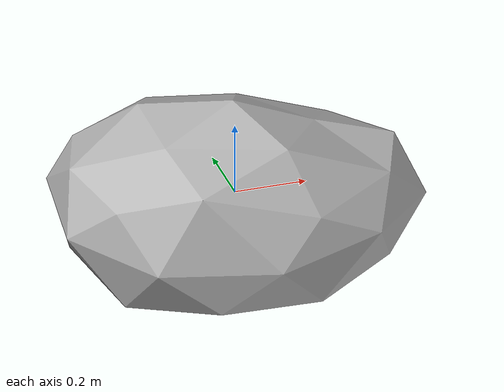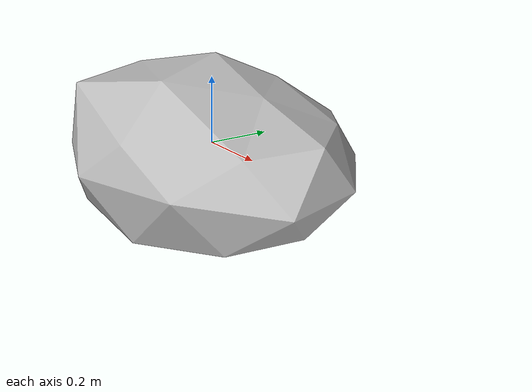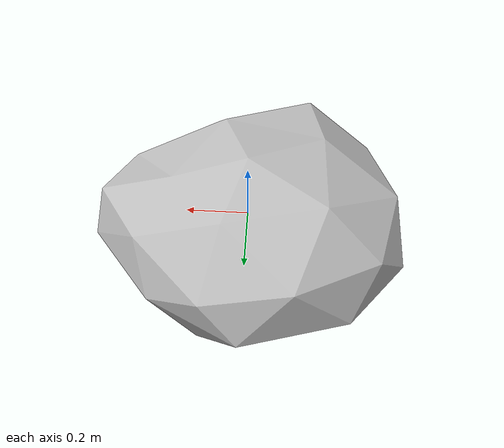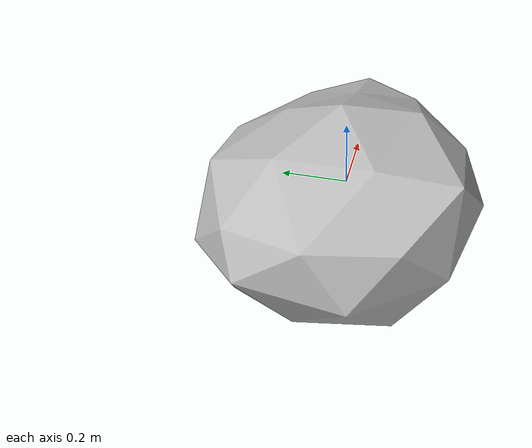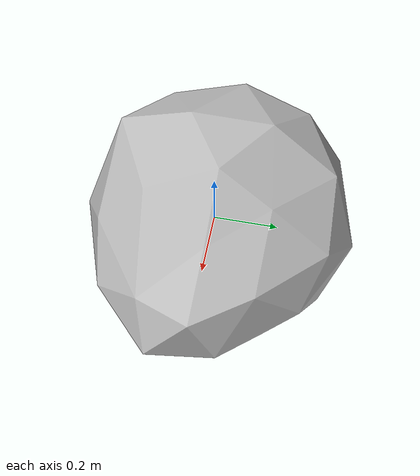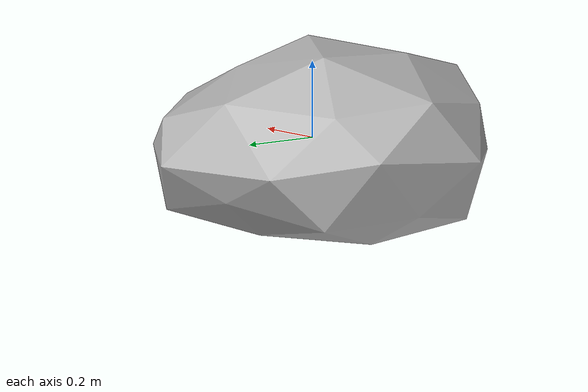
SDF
<?xml version="1.0" ?>
<sdf version="1.5">
  <model name="RockSet_1_static">
    <static>true</static>
    <link name="link">
      <inertial>
        <mass>10.0</mass>
      </inertial>
      <collision name="collision">
        <geometry>
          <mesh>
            <uri>model://RockSet_1/meshes/RockSet.dae</uri>
          </mesh>
        </geometry>
      </collision>
      <visual name="visual">
        <geometry>
          <mesh>
            <uri>model://RockSet_1/meshes/RockSet.dae</uri>
          </mesh>
        </geometry>
      </visual>
      <self_collide>false</self_collide>
      <kinematic>false</kinematic>
      <gravity>true</gravity>
    </link>
  </model>
</sdf>
